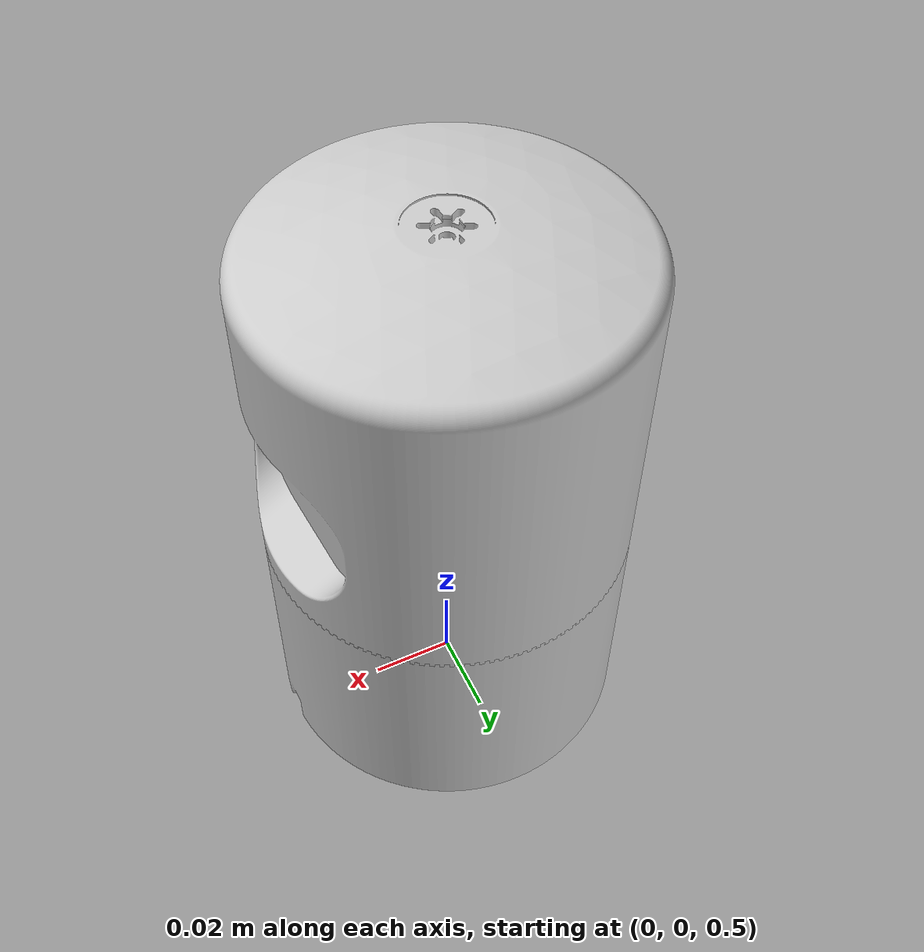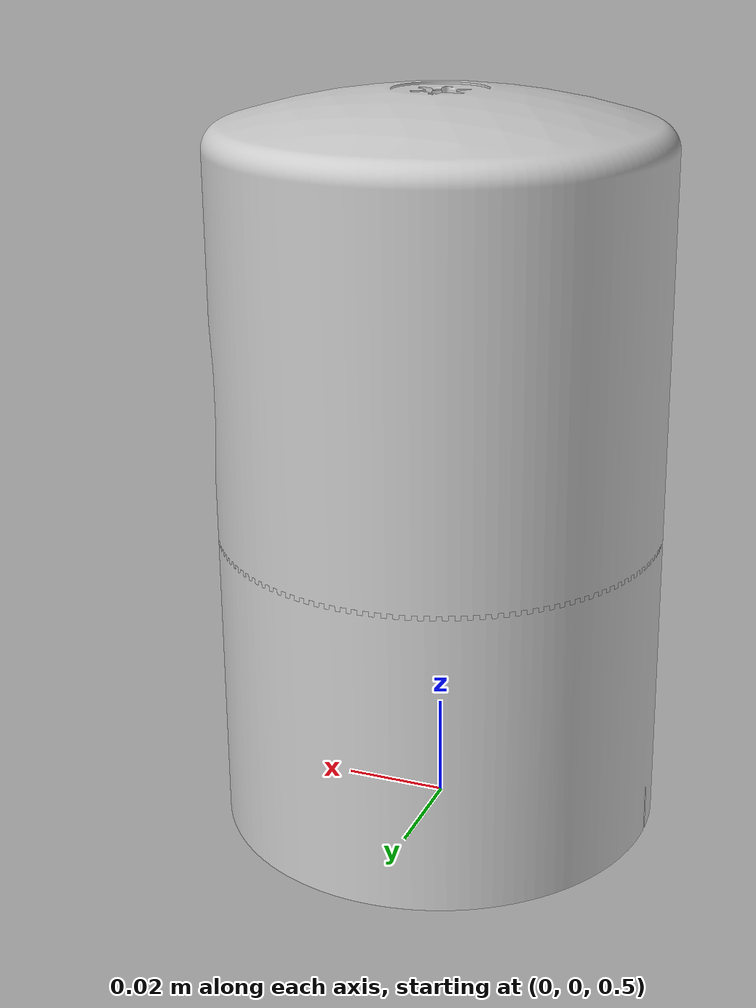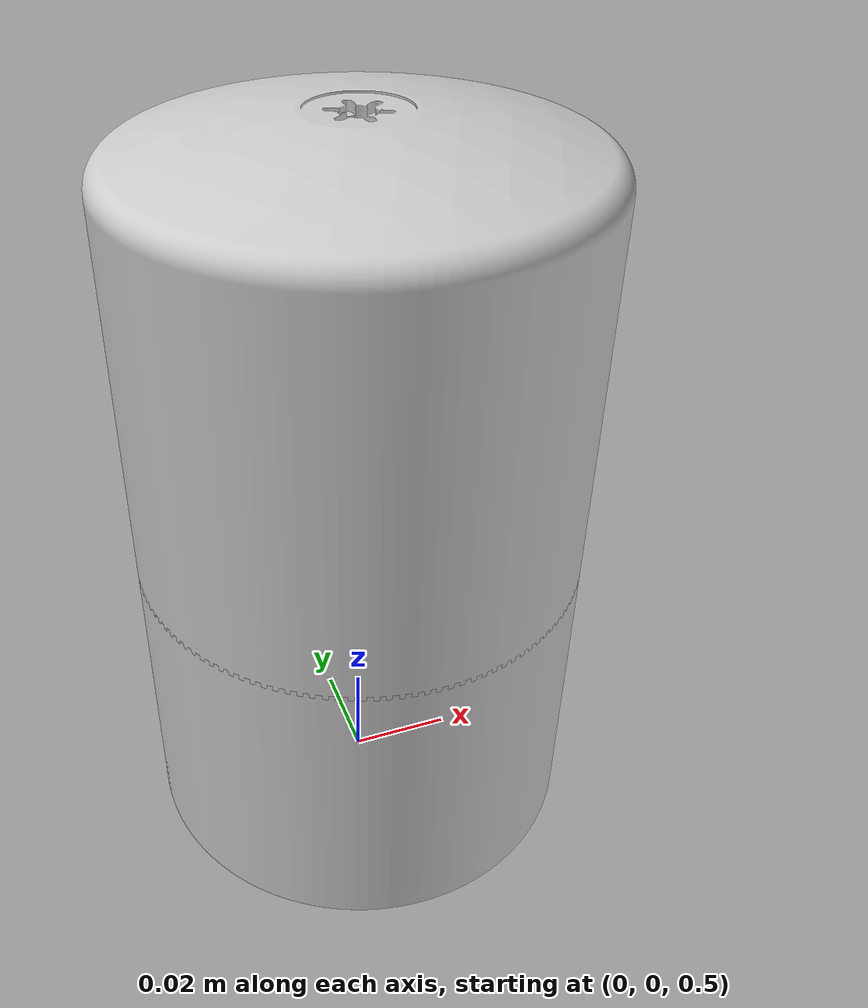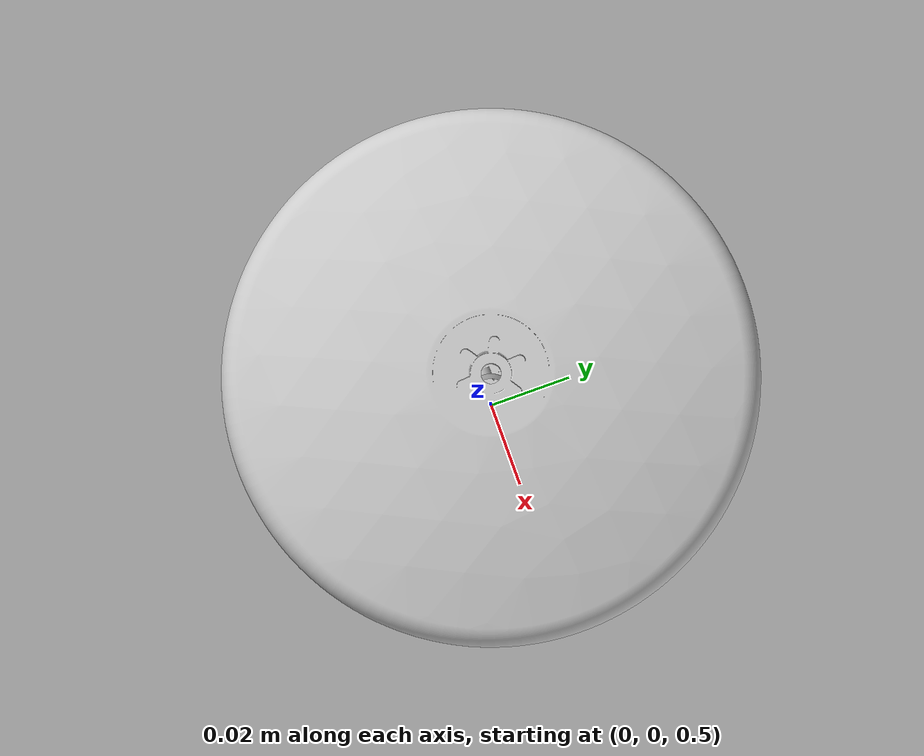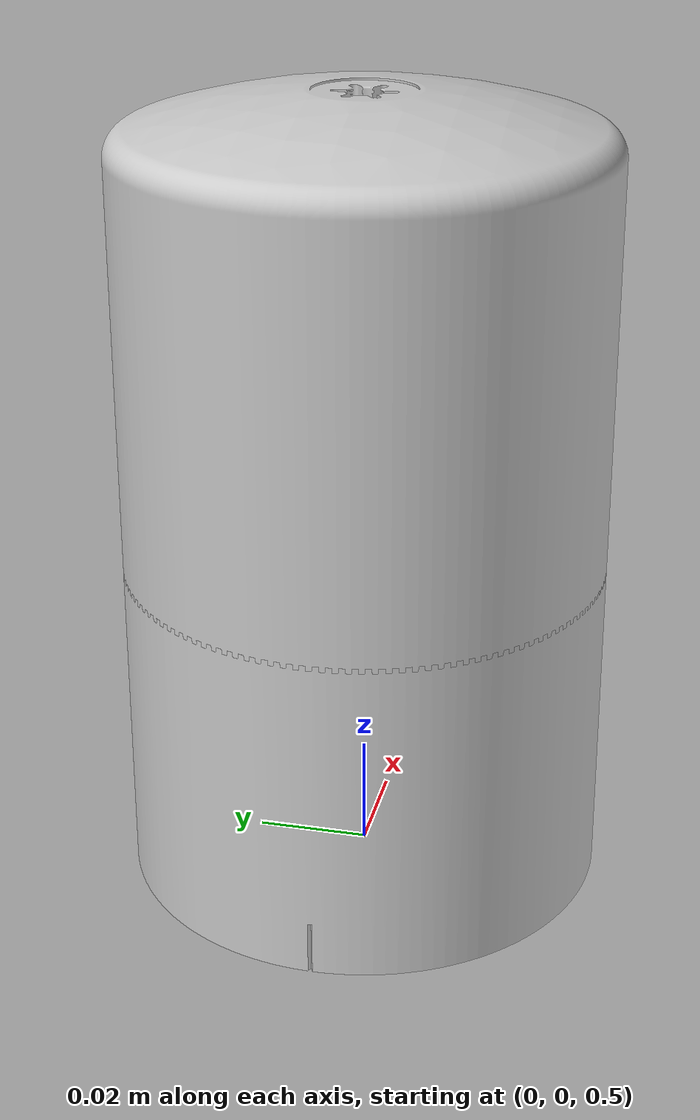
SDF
<?xml version="1.0" ?>
<sdf version="1.5">
  <model name="velodyne">
    <pose>0 0 0.5 0 0 0</pose>

     <plugin name="velodyne_control" filename="libvelodyne.so">
        <rate>1.0</rate> <!-- HZ -->
        <angleRes>1.0</angleRes>
	<verticalAngleResolution>1.333355</verticalAngleResolution> <!-- for validation and RVIZ publish calculate -->
	<RVIZPublishRate>1.0</RVIZPublishRate> <!-- HZ -->
    </plugin>

    <link name="base">
      <pose>0 0 0.029335 0 0 0</pose>
      <inertial>
        <mass>1.2</mass>
        <inertia>
          <ixx>0.001087473</ixx>
          <iyy>0.001087473</iyy>
          <izz>0.001092437</izz>
          <ixy>0</ixy>
          <ixz>0</ixz>
          <iyz>0</iyz>
        </inertia>
      </inertial>
      <collision name="base_collision">
        <geometry>
          <cylinder>
            <radius>.04267</radius>
            <length>.05867</length>
          </cylinder>
        </geometry>
      </collision>
      <visual name="base_visual">
        <pose>0 0 -0.029335 0 0 0</pose>
        <geometry>
          <mesh>
            <uri>model://velodyne_hdl32/meshes/velodyne_base.dae</uri>
          </mesh>
        </geometry>
      </visual>
    </link>

    <link name="top">
      <pose>0 0 0.095455 0 0 0</pose>
      <inertial>
        <mass>0.1</mass>
        <inertia>
          <ixx>0.000090623</ixx>
          <iyy>0.000090623</iyy>
          <izz>0.000091036</izz>
          <ixy>0</ixy>
          <ixz>0</ixz>
          <iyz>0</iyz>
        </inertia>
      </inertial>
      <collision name="top_collision">
        <geometry>
          <cylinder>
            <radius>0.04267</radius>
            <length>0.07357</length>
          </cylinder>
        </geometry>
      </collision>
      <visual name="top_visual">
        <pose>0 0 -0.0376785 0 0 1.5707</pose>
        <geometry>
          <mesh>
            <uri>model://velodyne_hdl32/meshes/velodyne_top.dae</uri>
          </mesh>
        </geometry>
      </visual>

      <sensor type="ray" name="velodyne_ray">
        <pose>0 0 -0.004645 1.5707 0 0</pose>
        <visualize>true</visualize>
        <update_rate>360</update_rate>
        <ray>
          <scan>
            <horizontal>
              <samples>32</samples>
              <resolution>1</resolution>
              <min_angle>-0.53529248</min_angle>
              <max_angle>0.18622663</max_angle>
            </horizontal>
          </scan>

          <range>
            <min>0.1</min>
            <max>70</max>
            <resolution>0.02</resolution>
          </range>
        </ray>
      </sensor>

      <sensor type="ray" name="velodyne_ray_2">
        <pose>0 0 -0.004645 1.5707 0 0.6283185307</pose>
        <visualize>true</visualize>
        <update_rate>360</update_rate>
        <ray>
          <scan>
            <horizontal>
              <samples>32</samples>
              <resolution>1</resolution>
              <min_angle>-0.53529248</min_angle>
              <max_angle>0.18622663</max_angle>
            </horizontal>
          </scan>

          <range>
            <min>0.1</min>
            <max>70</max>
            <resolution>0.02</resolution>
          </range>
        </ray>
      </sensor>

      <sensor type="ray" name="velodyne_ray_3">
        <pose>0 0 -0.004645 1.5707 0 1.2566370614</pose>
        <visualize>true</visualize>
        <update_rate>360</update_rate>
        <ray>
          <scan>
            <horizontal>
              <samples>32</samples>
              <resolution>1</resolution>
              <min_angle>-0.53529248</min_angle>
              <max_angle>0.18622663</max_angle>
            </horizontal>
          </scan>

          <range>
            <min>0.1</min>
            <max>70</max>
            <resolution>0.02</resolution>
          </range>
        </ray>
      </sensor>

      <sensor type="ray" name="velodyne_ray_4">
        <pose>0 0 -0.004645 1.5707 0 1.8849555922</pose>
        <visualize>true</visualize>
        <update_rate>360</update_rate>
        <ray>
          <scan>
            <horizontal>
              <samples>32</samples>
              <resolution>1</resolution>
              <min_angle>-0.53529248</min_angle>
              <max_angle>0.18622663</max_angle>
            </horizontal>
          </scan>

          <range>
            <min>0.1</min>
            <max>70</max>
            <resolution>0.02</resolution>
          </range>
        </ray>
      </sensor>

      <sensor type="ray" name="velodyne_ray_5">
        <pose>0 0 -0.004645 1.5707 0 2.5132741229</pose>
        <visualize>true</visualize>
        <update_rate>360</update_rate>
        <ray>
          <scan>
            <horizontal>
              <samples>32</samples>
              <resolution>1</resolution>
              <min_angle>-0.53529248</min_angle>
              <max_angle>0.18622663</max_angle>
            </horizontal>
          </scan>

          <range>
            <min>0.1</min>
            <max>70</max>
            <resolution>0.02</resolution>
          </range>
        </ray>
      </sensor>

      <sensor type="ray" name="velodyne_ray_6">
        <pose>0 0 -0.004645 1.5707 0 3.1415926536</pose>
        <visualize>true</visualize>
        <update_rate>360</update_rate>
        <ray>
          <scan>
            <horizontal>
              <samples>32</samples>
              <resolution>1</resolution>
              <min_angle>-0.53529248</min_angle>
              <max_angle>0.18622663</max_angle>
            </horizontal>
          </scan>

          <range>
            <min>0.1</min>
            <max>70</max>
            <resolution>0.02</resolution>
          </range>
        </ray>
      </sensor>

      <sensor type="ray" name="velodyne_ray_7">
        <pose>0 0 -0.004645 1.5707 0 3.7699111843</pose>
        <visualize>true</visualize>
        <update_rate>360</update_rate>
        <ray>
          <scan>
            <horizontal>
              <samples>32</samples>
              <resolution>1</resolution>
              <min_angle>-0.53529248</min_angle>
              <max_angle>0.18622663</max_angle>
            </horizontal>
          </scan>

          <range>
            <min>0.1</min>
            <max>70</max>
            <resolution>0.02</resolution>
          </range>
        </ray>
      </sensor>

      <sensor type="ray" name="velodyne_ray_8">
        <pose>0 0 -0.004645 1.5707 0 4.398229715</pose>
        <visualize>true</visualize>
        <update_rate>360</update_rate>
        <ray>
          <scan>
            <horizontal>
              <samples>32</samples>
              <resolution>1</resolution>
              <min_angle>-0.53529248</min_angle>
              <max_angle>0.18622663</max_angle>
            </horizontal>
          </scan>

          <range>
            <min>0.1</min>
            <max>70</max>
            <resolution>0.02</resolution>
          </range>
        </ray>
      </sensor>

      <sensor type="ray" name="velodyne_ray_9">
        <pose>0 0 -0.004645 1.5707 0 5.0265482457</pose>
        <visualize>true</visualize>
        <update_rate>360</update_rate>
        <ray>
          <scan>
            <horizontal>
              <samples>32</samples>
              <resolution>1</resolution>
              <min_angle>-0.53529248</min_angle>
              <max_angle>0.18622663</max_angle>
            </horizontal>
          </scan>

          <range>
            <min>0.1</min>
            <max>70</max>
            <resolution>0.02</resolution>
          </range>
        </ray>
      </sensor>

      <sensor type="ray" name="velodyne_ray_10">
        <pose>0 0 -0.004645 1.5707 0 5.6548667765</pose>
        <visualize>true</visualize>
        <update_rate>360</update_rate>
        <ray>
          <scan>
            <horizontal>
              <samples>32</samples>
              <resolution>1</resolution>
              <min_angle>-0.53529248</min_angle>
              <max_angle>0.18622663</max_angle>
            </horizontal>
          </scan>

          <range>
            <min>0.1</min>
            <max>70</max>
            <resolution>0.02</resolution>
          </range>
        </ray>
      </sensor>
    </link>

    <joint type="revolute" name="joint">
      <pose>0 0 -0.036785 0 0 0</pose>
      <parent>base</parent>
      <child>top</child>
      <axis>
        <xyz>0 0 1</xyz>
        <limit>
          <lower>-10000000000000000</lower>
          <upper>10000000000000000</upper>
        </limit>
      </axis>
    </joint>
  </model>
</sdf>
